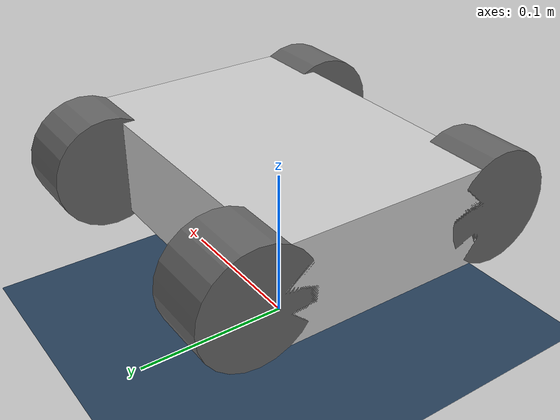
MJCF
<mujoco model="simple_car">
  <compiler inertiafromgeom="true" angle="radian"/>

  <option gravity="0 0 -9.81" integrator="RK4" timestep="0.001"/>

  <asset>
    <texture type="2d" name="groundplane" builtin="checker" rgb1="0.2 0.3 0.4" rgb2="0.1 0.2 0.3" width="512" height="512"/>
    <material name="groundplane" texture="groundplane" texrepeat="1 1" texuniform="true"/>
  </asset>

  <worldbody>
    <light name="top" pos="0 0 1.5"/>
    <geom name="floor" type="plane" size="5 5 0.1" material="groundplane"/>

    <body name="chassis" pos="0 0 0.1">
      <joint type="free"/>
      <geom type="box" size="0.1 0.07 0.03" rgba="0.8 0.8 0.8 1" mass="1.5"/>

      <body name="front_right_wheel" pos="0.08 -0.08 0">
        <joint name="front_right_hinge" type="hinge" axis="0 1 0"/>
        <geom type="cylinder" size="0.035 0.02" quat="0.7071 0 0.7071 0" rgba="0.4 0.4 0.4 1" friction="1.2 0.1 0.1"/>
      </body>
      <body name="front_left_wheel" pos="0.08 0.08 0">
        <joint name="front_left_hinge" type="hinge" axis="0 1 0"/>
        <geom type="cylinder" size="0.035 0.02" quat="0.7071 0 0.7071 0" rgba="0.4 0.4 0.4 1" friction="1.2 0.1 0.1"/>
      </body>
      <body name="back_right_wheel" pos="-0.08 -0.08 0">
        <joint name="back_right_hinge" type="hinge" axis="0 1 0"/>
        <geom type="cylinder" size="0.035 0.02" quat="0.7071 0 0.7071 0" rgba="0.4 0.4 0.4 1" friction="1.2 0.1 0.1"/>
      </body>
      <body name="back_left_wheel" pos="-0.08 0.08 0">
        <joint name="back_left_hinge" type="hinge" axis="0 1 0"/>
        <geom type="cylinder" size="0.035 0.02" quat="0.7071 0 0.7071 0" rgba="0.4 0.4 0.4 1" friction="1.2 0.1 0.1"/>
      </body>
    </body>
  </worldbody>

  <actuator>
    <motor name="front_right_motor" joint="front_right_hinge" gear="150"/>
    <motor name="front_left_motor"  joint="front_left_hinge"  gear="150"/>
    <motor name="back_right_motor"  joint="back_right_hinge"  gear="150"/>
    <motor name="back_left_motor"   joint="back_left_hinge"   gear="150"/>
  </actuator>
</mujoco>
